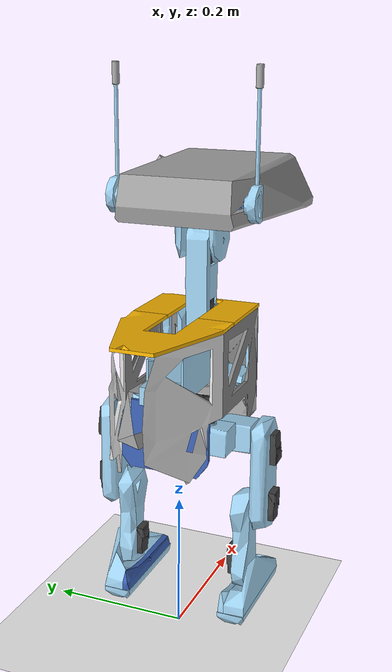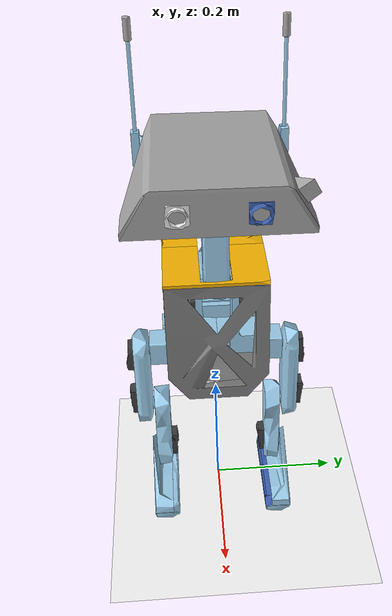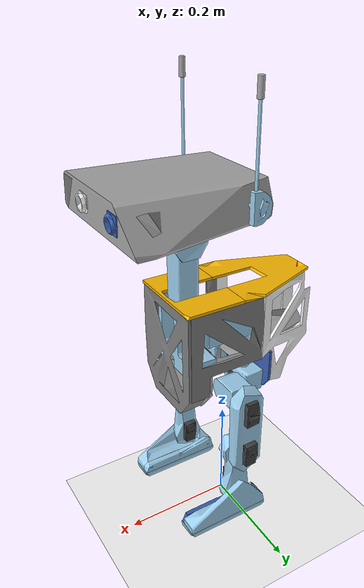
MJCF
<mujoco model="scene">
    <include file="bdx_v2.xml"/>

    <visual>
        <headlight diffuse="0.6 0.6 0.6" ambient="0.3 0.3 0.3" specular="0 0 0"/>
        <rgba haze="0.15 0.25 0.35 1"/>
        <global azimuth="160" elevation="-20"/>
    </visual>

    <asset>
        <texture type="skybox" builtin="gradient" rgb1="1 1 1" rgb2="1 1 1" width="800" height="800"/>
        <texture type="2d" name="groundplane" builtin="checker" mark="edge" rgb1="1 1 1" rgb2="1 1 1" markrgb="0 0 0"
            width="300" height="300"/>
        <material name="groundplane" texture="groundplane" texuniform="true" texrepeat="5 5" reflectance="0"/>
    </asset>

    <worldbody>
        <body name="floor">
            <geom name="floor" size="0 0 0.01" type="plane" material="groundplane" contype="1" conaffinity="0"
                priority="1" friction="0.6" condim="3"/>
        </body>
    </worldbody>
    <keyframe>
        <key name="home"
            qpos="
    0 0 0.25
    1 0 0 0
          0
        0
        1.05
        -1.65
        -0.65
        -0.775
        -0.775
        0
        0
        0
        0
        1.05
        1.65
        0.65
"
            ctrl="
          0
        0
        1.05
        -1.65
        -0.65
        -0.775
        -0.775
        0
        0
        0
        0
        1.05
        1.65
        0.65
          "/>
    </keyframe>
</mujoco>

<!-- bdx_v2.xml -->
<!-- Generated using onshape-to-robot -->
<!-- Onshape https://cad.onshape.com/documents/6ef1edce1e53abf975b22e4e/w/36a342626c723895f8576bca/e/3f7555bc3cf0e9c73ccb9af7 -->
<mujoco model="bdx_v2">

  <option iterations="1" ls_iterations="5">
    <flag eulerdamp="disable"/>
  </option>
  <compiler angle="radian" meshdir="assets"/>

  <default>
    <default class="bdx_v2">
      <joint frictionloss="0.1" armature="0.005"/>
      <position kp="50" dampratio="1"/>
      <default class="visual">
        <geom type="mesh" contype="0" conaffinity="0" group="2"/>
      </default>
      <default class="collision">
        <geom group="3"/>
      </default>
    </default>
  </default>
  <!-- Additional sensors.xml -->
  <sensor>
    <gyro site="imu" name="gyro"/>
    <velocimeter site="imu" name="local_linvel"/>
    <accelerometer site="imu" name="accelerometer"/>
    <framezaxis objtype="site" objname="imu" name="upvector"/>
    <framexaxis objtype="site" objname="imu" name="forwardvector"/>
    <framelinvel objtype="site" objname="imu" name="global_linvel"/>
    <frameangvel objtype="site" objname="imu" name="global_angvel"/>
    <framepos objtype="site" objname="imu" name="position"/>
    <framequat objtype="site" objname="imu" name="orientation"/>
    <framelinvel objtype="site" objname="right_foot" name="right_foot_global_linvel"/>
    <framelinvel objtype="site" objname="left_foot" name="left_foot_global_linvel"/>
    <framexaxis objtype="site" objname="left_foot" name="left_foot_upvector"/>
    <framexaxis objtype="site" objname="right_foot" name="right_foot_upvector"/>
    <framepos objtype="site" objname="left_foot" name="left_foot_pos"/>
    <framepos objtype="site" objname="right_foot" name="right_foot_pos"/>
  </sensor>
  <!-- Additional joints_properties.xml -->
  <default>
    <default class="sts3215">
      <geom contype="0" conaffinity="0"/>
      <joint damping="0.60" frictionloss="0.052" armature="0.028"/>
      <position kp="100" kv="0.0" forcerange="-100 100"/>
    </default>
    <default class="backlash">
      <!-- +/- 0.5° of backlash -->
      <joint damping="0.01" frictionloss="0" armature="0.01" limited="true" range="-0.008726646259971648 0.008726646259971648"/>
    </default>
  </default>
  <worldbody>
    <!-- Link trunk_assembly -->
    <body name="trunk_assembly" pos="0 0 0.35" quat="1 0 0 0" childclass="bdx_v2">
      <freejoint name="trunk_assembly_freejoint"/>
      <inertial pos="0.00707759 0.000136617 0.0326219" mass="2.73391" fullinertia="0.00826751 0.0169634 0.0160137 7.20875e-06 0.000237105 -1.27506e-06"/>
      <!-- Frame imu -->
      <site group="0" name="imu" pos="-0.055 0 0.08"/>
      <!-- Part zeee_lipo -->
      <geom type="mesh" class="visual" pos="-0.0820727 0.0004 0.03675" quat="0.707107 -5.55112e-17 -3.33067e-16 0.707107" mesh="zeee_lipo" material="zeee_lipo_material"/>
      <!-- Part torso_frame_v2 -->
      <geom type="mesh" class="visual" pos="-0.00897275 -2.32199e-17 -0.02" quat="0.707107 0 1.11022e-16 0.707107" mesh="torso_frame_v2" material="torso_frame_v2_material"/>
      <!-- Part back_right_frame -->
      <geom type="mesh" class="visual" pos="-0.00897275 -2.77631e-17 1.77033e-17" quat="0.707107 0 0 0.707107" mesh="back_right_frame" material="back_right_frame_material"/>
      <!-- Part back_left_frame -->
      <geom type="mesh" class="visual" pos="-0.00897275 -2.77631e-17 1.77033e-17" quat="0.707107 0 1.11022e-16 0.707107" mesh="back_left_frame" material="back_left_frame_material"/>
      <!-- Part battery_rack -->
      <geom type="mesh" class="visual" pos="-0.0521557 -1.7578e-17 0.03725" quat="0.707107 0 0 0.707107" mesh="battery_rack" material="battery_rack_material"/>
      <!-- Part back_top_frame -->
      <geom type="mesh" class="visual" pos="-0.00897275 -3.42054e-17 1.77033e-17" quat="0.707107 -0 -2.22045e-16 0.707107" mesh="back_top_frame" material="back_top_frame_material"/>
      <!-- Part right_frame -->
      <geom type="mesh" class="visual" pos="-0.00897275 -2.77631e-17 3.15811e-17" quat="0.707107 0 -2.22045e-16 0.707107" mesh="right_frame" material="right_frame_material"/>
      <!-- Part inner_front_frame -->
      <geom type="mesh" class="visual" pos="-0.00897275 -2.7861e-17 1.77033e-17" quat="0.707107 0 -2.22045e-16 0.707107" mesh="inner_front_frame" material="inner_front_frame_material"/>
      <!-- Part front_frame -->
      <geom type="mesh" class="visual" pos="-0.00897275 -2.77631e-17 1.77033e-17" quat="0.707107 0 1.11022e-16 0.707107" mesh="front_frame" material="front_frame_material"/>
      <!-- Part servo_side -->
      <geom type="mesh" class="visual" pos="0.0610552 0.035 0.02" quat="0.5 0.5 0.5 0.5" mesh="servo_side" material="servo_side_material"/>
      <!-- Part circular_servo_prong -->
      <geom type="mesh" class="visual" pos="0.0810552 0.021 0.1" quat="0.707107 0.707107 4.44089e-16 7.04915e-15" mesh="circular_servo_prong" material="circular_servo_prong_material"/>
      <!-- Part bearing_side_spacer -->
      <geom type="mesh" class="visual" pos="0.0810552 -0.018 0.1" quat="3.30055e-15 3.30055e-15 0.707107 -0.707107" mesh="bearing_side_spacer" material="bearing_side_spacer_material"/>
      <!-- Part bearing_side -->
      <geom type="mesh" class="visual" pos="0.0610552 -0.035 0.02" quat="0.5 0.5 0.5 0.5" mesh="bearing_side" material="bearing_side_material"/>
      <!-- Part inner_back_frame -->
      <geom type="mesh" class="visual" pos="-0.0121557 -1.11131e-17 1.21431e-17" quat="0.707107 -0 1.11022e-16 0.707107" mesh="inner_back_frame" material="inner_back_frame_material"/>
      <!-- Part front_top_frame -->
      <geom type="mesh" class="visual" pos="-0.00897275 -3.0736e-17 1.77033e-17" quat="0.707107 0 -2.22045e-16 0.707107" mesh="front_top_frame" material="front_top_frame_material"/>
      <!-- Part left_frame -->
      <geom type="mesh" class="visual" pos="-0.00897275 -2.77631e-17 4.69285e-18" quat="0.707107 0 8.32667e-17 0.707107" mesh="left_frame" material="left_frame_material"/>
      <!-- Part wj_wk00_0124bottomcase_45 -->
      <geom type="mesh" class="visual" pos="-0.00897275 0.0241 -0.0079" quat="0.5 -0.5 0.5 -0.5" mesh="wj_wk00_0124bottomcase_45" material="wj_wk00_0124bottomcase_45_material"/>
      <!-- Part wj_wk00_0122topcabinetcase_95 -->
      <geom type="mesh" class="visual" pos="-0.00897275 0.0241 -0.0079" quat="0.5 -0.5 0.5 -0.5" mesh="wj_wk00_0122topcabinetcase_95" material="wj_wk00_0122topcabinetcase_95_material"/>
      <!-- Part wj_wk00_0123middlecase_56 -->
      <geom type="mesh" class="visual" pos="-0.00897275 0.0241 -0.0079" quat="0.5 -0.5 0.5 -0.5" mesh="wj_wk00_0123middlecase_56" material="wj_wk00_0123middlecase_56_material"/>
      <!-- Part wj_wk00_0124bottomcase_45_2 -->
      <geom type="mesh" class="visual" pos="-0.00897275 -0.0241 -0.0079" quat="0.5 -0.5 -0.5 0.5" mesh="wj_wk00_0124bottomcase_45" material="wj_wk00_0124bottomcase_45_material"/>
      <!-- Part wj_wk00_0122topcabinetcase_95_2 -->
      <geom type="mesh" class="visual" pos="-0.00897275 -0.0241 -0.0079" quat="0.5 -0.5 -0.5 0.5" mesh="wj_wk00_0122topcabinetcase_95" material="wj_wk00_0122topcabinetcase_95_material"/>
      <!-- Part wj_wk00_0123middlecase_56_2 -->
      <geom type="mesh" class="visual" pos="-0.00897275 -0.0241 -0.0079" quat="0.5 -0.5 -0.5 0.5" mesh="wj_wk00_0123middlecase_56" material="wj_wk00_0123middlecase_56_material"/>
      <!-- Frame trunk -->
      <site group="3" name="trunk" pos="0.0503443 -1.76728e-17 0.079" quat="1 0 -7.97973e-17 2.1859e-17"/>
      <!-- Link left_hip_rotator_cuff_assem -->
      <body name="left_hip_rotator_cuff_assem" pos="-0.00897275 0.0496 -0.0162" quat="0.707107 2.87086e-15 -1.11022e-16 -0.707107">
        <!-- Joint from trunk_assembly to left_hip_rotator_cuff_assem -->
        <joint axis="0 0 1" name="left_hip_yaw" type="hinge" range="-0.4363323129985664 1.1344640137963302" class="sts3215"/>
        <inertial pos="-0.000178906 -0.000213538 -0.0216312" mass="0.118126" fullinertia="3.14061e-05 6.11352e-05 5.72854e-05 -3.3789e-07 -1.39865e-07 -1.32975e-07"/>
        <!-- Part circular_servo_prong_2 -->
        <geom type="mesh" class="visual" pos="1.38778e-17 -5.20417e-18 -0.002" quat="0.707107 1.8927e-15 -4.71845e-15 -0.707107" mesh="circular_servo_prong" material="circular_servo_prong_material"/>
        <!-- Part right_hip_rotator_cuff -->
        <geom type="mesh" class="visual" pos="-0.064 0.0185 -0.027" quat="0.707107 -3.35657e-15 -0.707107 1.43586e-17" mesh="right_hip_rotator_cuff" material="right_hip_rotator_cuff_material"/>
        <!-- Part wj_wk00_0124bottomcase_45_3 -->
        <geom type="mesh" class="visual" pos="0.01265 0.0088 -0.027" quat="1 -2.17757e-15 -5.44009e-15 -2.22998e-15" mesh="wj_wk00_0124bottomcase_45" material="wj_wk00_0124bottomcase_45_material"/>
        <!-- Part wj_wk00_0122topcabinetcase_95_3 -->
        <geom type="mesh" class="visual" pos="0.01265 0.0088 -0.027" quat="1 -2.17757e-15 -5.44009e-15 -2.22998e-15" mesh="wj_wk00_0122topcabinetcase_95" material="wj_wk00_0122topcabinetcase_95_material"/>
        <!-- Part wj_wk00_0123middlecase_56_3 -->
        <geom type="mesh" class="visual" pos="0.01265 0.0088 -0.027" quat="1 -2.17757e-15 -5.44009e-15 -2.22998e-15" mesh="wj_wk00_0123middlecase_56" material="wj_wk00_0123middlecase_56_material"/>
        <!-- Link left_lateral_hip_bone_assem -->
        <body name="left_lateral_hip_bone_assem" pos="-0.01285 0.0171 -0.027" quat="0.5 0.5 0.5 -0.5">
          <!-- Joint from left_hip_rotator_cuff_assem to left_lateral_hip_bone_assem -->
          <joint axis="0 0 1" name="left_hip_roll" type="hinge" range="-0.4363323129985726 0.43633231299859215" class="sts3215"/>
          <inertial pos="-3.22586e-09 -0.0125969 -0.0217345" mass="0.110381" fullinertia="4.57868e-05 2.96288e-05 4.45791e-05 6.81317e-12 -9.00209e-13 -3.69846e-07"/>
          <!-- Part circular_servo_prong_3 -->
          <geom type="mesh" class="visual" pos="6.93889e-18 0 -0.002" quat="1 0 -5.55112e-17 -2.05758e-17" mesh="circular_servo_prong" material="circular_servo_prong_material"/>
          <!-- Part lateral_hip_bone -->
          <geom type="mesh" class="visual" pos="6.93889e-18 -0.02 -0.002" quat="9.36437e-17 0.707107 -0.707107 4.56148e-16" mesh="lateral_hip_bone" material="lateral_hip_bone_material"/>
          <!-- Part circular_servo_prong_4 -->
          <geom type="mesh" class="visual" pos="6.93889e-18 -0.04 -0.022" quat="0.5 0.5 -0.5 0.5" mesh="circular_servo_prong" material="circular_servo_prong_material"/>
          <!-- Link left_thigh_assem -->
          <body name="left_thigh_assem" pos="0 -0.042 -0.022" quat="0.707107 0.707107 -5.38879e-08 5.38879e-08">
            <!-- Joint from left_lateral_hip_bone_assem to left_thigh_assem -->
            <joint axis="0 0 1" name="left_hip_pitch" type="hinge" range="-1.5241807105326188e-07 3.141592501171722" class="sts3215"/>
            <inertial pos="0.0565982 -3.57567e-11 0.0135897" mass="0.314271" fullinertia="0.000100377 0.000691725 0.00074627 -4.47926e-08 2.07523e-19 3.3258e-20"/>
            <!-- Part left_thigh -->
            <geom type="mesh" class="visual" pos="0.0565982 -3.57567e-11 -0.0002" quat="0.707107 1.54556e-16 1.11022e-16 0.707107" mesh="left_thigh" material="left_thigh_material"/>
            <!-- Part wj_wk00_0124bottomcase_45_4 -->
            <geom type="mesh" class="visual" pos="0.0876965 -7.15135e-11 0.0083" quat="6.33606e-17 0 -0.707107 0.707107" mesh="wj_wk00_0124bottomcase_45" material="wj_wk00_0124bottomcase_45_material"/>
            <!-- Part wj_wk00_0122topcabinetcase_95_4 -->
            <geom type="mesh" class="visual" pos="0.0876965 -7.15135e-11 0.0083" quat="6.33606e-17 0 -0.707107 0.707107" mesh="wj_wk00_0122topcabinetcase_95" material="wj_wk00_0122topcabinetcase_95_material"/>
            <!-- Part wj_wk00_0123middlecase_56_4 -->
            <geom type="mesh" class="visual" pos="0.0876965 -7.15135e-11 0.0083" quat="6.33606e-17 0 -0.707107 0.707107" mesh="wj_wk00_0123middlecase_56" material="wj_wk00_0123middlecase_56_material"/>
            <!-- Part wj_wk00_0124bottomcase_45_5 -->
            <geom type="mesh" class="visual" pos="0.0255 -3.46945e-18 0.0083" quat="0.707107 -0.707107 -0 -7.12226e-24" mesh="wj_wk00_0124bottomcase_45" material="wj_wk00_0124bottomcase_45_material"/>
            <!-- Part wj_wk00_0122topcabinetcase_95_5 -->
            <geom type="mesh" class="visual" pos="0.0255 -3.46945e-18 0.0083" quat="0.707107 -0.707107 -0 -7.12226e-24" mesh="wj_wk00_0122topcabinetcase_95" material="wj_wk00_0122topcabinetcase_95_material"/>
            <!-- Part wj_wk00_0123middlecase_56_5 -->
            <geom type="mesh" class="visual" pos="0.0255 -3.46945e-18 0.0083" quat="0.707107 -0.707107 -0 -7.12226e-24" mesh="wj_wk00_0123middlecase_56" material="wj_wk00_0123middlecase_56_material"/>
            <!-- Link left_calf_assem -->
            <body name="left_calf_assem" pos="0.113196 -7.15135e-11 -4.16334e-17" quat="9.28799e-17 -4.51028e-17 -3.33067e-16 -1">
              <!-- Joint from left_thigh_assem to left_calf_assem -->
              <joint axis="0 0 1" name="left_knee" type="hinge" range="-3.1415923279115385 3.256782545868475e-07" class="sts3215"/>
              <inertial pos="-0.0526873 1.60599e-06 -0.0151918" mass="0.221129" fullinertia="5.58245e-05 0.00043323 0.000459275 1.87819e-08 -9.55779e-06 -9.66877e-10"/>
              <!-- Part circular_servo_prong_5 -->
              <geom type="mesh" class="visual" pos="-5.55112e-17 1.73472e-17 -0.002" quat="0.707107 -1.39796e-15 -1.22125e-15 -0.707107" mesh="circular_servo_prong" material="circular_servo_prong_material"/>
              <!-- Part left_calf -->
              <geom type="mesh" class="visual" pos="-0.0985 3.20793e-08 -0.027" quat="1.15145e-07 0.707107 -1.15145e-07 0.707107" mesh="left_calf" material="left_calf_material"/>
              <!-- Part wj_wk00_0124bottomcase_45_6 -->
              <geom type="mesh" class="visual" pos="-0.0731483 2.37871e-08 -0.0105" quat="0.707107 0.707107 -1.15145e-07 -1.15145e-07" mesh="wj_wk00_0124bottomcase_45" material="wj_wk00_0124bottomcase_45_material"/>
              <!-- Part wj_wk00_0122topcabinetcase_95_6 -->
              <geom type="mesh" class="visual" pos="-0.0731483 2.37871e-08 -0.0105" quat="0.707107 0.707107 -1.15145e-07 -1.15145e-07" mesh="wj_wk00_0122topcabinetcase_95" material="wj_wk00_0122topcabinetcase_95_material"/>
              <!-- Part wj_wk00_0123middlecase_56_6 -->
              <geom type="mesh" class="visual" pos="-0.0731483 2.37871e-08 -0.0105" quat="0.707107 0.707107 -1.15145e-07 -1.15145e-07" mesh="wj_wk00_0123middlecase_56" material="wj_wk00_0123middlecase_56_material"/>
              <!-- Link left_foot_assem -->
              <body name="left_foot_assem" pos="-0.0986483 3.20919e-08 -0.0022" quat="5.13478e-16 -1 7.6209e-08 -5.21026e-16">
                <!-- Joint from left_calf_assem to left_foot_assem -->
                <joint axis="0 0 1" name="left_ankle" type="hinge" range="-1.5707961535347135 1.5707965000550796" class="sts3215"/>
                <inertial pos="-0.0444214 -0.0216103 0.00782023" mass="0.311255" fullinertia="0.00064142 0.000140276 0.000695821 -2.8997e-05 2.323e-05 3.77705e-06"/>
                <!-- Part foot_button_connector -->
                <!-- Part circular_servo_prong_6 -->
                <geom type="mesh" class="visual" pos="0 0 -0.002" quat="1 0 0 -1.98192e-18" mesh="circular_servo_prong" material="circular_servo_prong_material"/>
                <!-- Part left_foot_frame -->
                <geom type="mesh" class="visual" pos="-0.05 1.31839e-16 -0.002" quat="0.5 0.5 0.5 0.5" mesh="left_foot_frame" material="left_foot_frame_material"/>
                <!-- Part left_foot_cover -->
                <geom type="mesh" class="visual" pos="-0.05 1.31839e-16 -0.002" quat="0.5 0.5 0.5 0.5" mesh="left_foot_cover" material="left_foot_cover_material"/>
                <!-- Part foot_pad -->
                <geom type="mesh" class="visual" pos="-0.0505 -0.025 0.0102" quat="0.5 0.5 0.5 -0.5" mesh="foot_pad" material="foot_pad_material"/>
                <geom type="mesh" class="collision" pos="-0.0505 -0.025 0.0102" quat="0.5 0.5 0.5 -0.5" mesh="foot_pad" material="foot_pad_material"
                name="left_foot_bottom_tpu"/>
                <!-- Frame left_foot -->
                <site group="3" name="left_foot" pos="-0.068 -0.025 0.0102" quat="0.5 -0.5 0.5 -0.5"/>
              </body>
            </body>
          </body>
        </body>
      </body>
      <!-- Link bottom_neck -->
      <body name="bottom_neck" pos="0.0810552 0.019 0.1" quat="0.5 -0.5 -0.5 -0.5">
        <!-- Joint from trunk_assembly to bottom_neck -->
        <joint axis="0 0 1" name="neck_pitch" type="hinge" range="-1.0471975511965976 0.0" class="sts3215"/>
        <inertial pos="0.0600186 0.000222011 -0.0175935" mass="0.274692" fullinertia="6.85265e-05 0.000556822 0.000563358 -5.57605e-07 9.97898e-09 7.16913e-09"/>
        <!-- Part bottom_neck_joint -->
        <geom type="mesh" class="visual" pos="0.0600153 0.000268429 -0.0368" quat="0.707107 -1.60677e-16 1.11022e-16 -0.707107" mesh="bottom_neck_joint" material="bottom_neck_joint_material"/>
        <!-- Part wj_wk00_0124bottomcase_45_7 -->
        <geom type="mesh" class="visual" pos="0.0255 -1.38778e-17 -0.0083" quat="0.707107 0.707107 -0 -5.7433e-31" mesh="wj_wk00_0124bottomcase_45" material="wj_wk00_0124bottomcase_45_material"/>
        <!-- Part wj_wk00_0122topcabinetcase_95_7 -->
        <geom type="mesh" class="visual" pos="0.0255 -1.38778e-17 -0.0083" quat="0.707107 0.707107 -0 -5.7433e-31" mesh="wj_wk00_0122topcabinetcase_95" material="wj_wk00_0122topcabinetcase_95_material"/>
        <!-- Part wj_wk00_0123middlecase_56_7 -->
        <geom type="mesh" class="visual" pos="0.0255 -1.38778e-17 -0.0083" quat="0.707107 0.707107 -0 -5.7433e-31" mesh="wj_wk00_0123middlecase_56" material="wj_wk00_0123middlecase_56_material"/>
        <!-- Part wj_wk00_0124bottomcase_45_8 -->
        <geom type="mesh" class="visual" pos="0.0945636 0.000268429 -0.0083" quat="2.49524e-16 3.56119e-16 0.707107 0.707107" mesh="wj_wk00_0124bottomcase_45" material="wj_wk00_0124bottomcase_45_material"/>
        <!-- Part wj_wk00_0122topcabinetcase_95_8 -->
        <geom type="mesh" class="visual" pos="0.0945636 0.000268429 -0.0083" quat="2.49524e-16 3.56119e-16 0.707107 0.707107" mesh="wj_wk00_0122topcabinetcase_95" material="wj_wk00_0122topcabinetcase_95_material"/>
        <!-- Part wj_wk00_0123middlecase_56_8 -->
        <geom type="mesh" class="visual" pos="0.0945636 0.000268429 -0.0083" quat="2.49524e-16 3.56119e-16 0.707107 0.707107" mesh="wj_wk00_0123middlecase_56" material="wj_wk00_0123middlecase_56_material"/>
        <!-- Link top_neck -->
        <body name="top_neck" pos="0.120064 0.000268429 9.47159e-16" quat="1.487e-16 0.707107 0.707107 -2.94747e-16">
          <!-- Joint from bottom_neck to top_neck -->
          <joint axis="0 0 1" name="head_pitch" type="hinge" range="-0.7853981633974101 0.7853981633974865" class="sts3215"/>
          <inertial pos="5.08398e-05 0.0347266 0.0188135" mass="0.236852" fullinertia="0.00026105 0.000166809 0.00022941 2.89716e-07 -1.14111e-08 6.06956e-07"/>
          <!-- Part neck_nod_hinge_bearing_side -->
          <geom type="mesh" class="visual" pos="0 -2.77556e-17 0.04" quat="1 -1.27759e-16 5.55112e-17 6.48043e-16" mesh="neck_nod_hinge_bearing_side" material="neck_nod_hinge_bearing_side_material"/>
          <!-- Part neck_nod_hinge_servo_side -->
          <geom type="mesh" class="visual" pos="1.38778e-17 0 -0.002" quat="1.11514e-16 -3.50414e-16 1 -3.27679e-16" mesh="neck_nod_hinge_servo_side" material="neck_nod_hinge_servo_side_material"/>
          <!-- Part bearing_side_spacer_2 -->
          <geom type="mesh" class="visual" pos="1.38778e-17 -5.55112e-17 0.037" quat="1 -1.42749e-16 -2.77556e-16 6.70261e-16" mesh="bearing_side_spacer" material="bearing_side_spacer_material"/>
          <!-- Part circular_servo_prong_7 -->
          <geom type="mesh" class="visual" pos="1.38778e-17 0 -0.002" quat="1 0 -1.73472e-18 6.32511e-17" mesh="circular_servo_prong" material="circular_servo_prong_material"/>
          <!-- Part wj_wk00_0124bottomcase_45_9 -->
          <geom type="mesh" class="visual" pos="-0.01314 0.0649 0.01886" quat="1.9006e-16 -2.62003e-16 1 -4.91187e-16" mesh="wj_wk00_0124bottomcase_45" material="wj_wk00_0124bottomcase_45_material"/>
          <!-- Part wj_wk00_0122topcabinetcase_95_9 -->
          <geom type="mesh" class="visual" pos="-0.01314 0.0649 0.01886" quat="1.9006e-16 -2.62003e-16 1 -4.91187e-16" mesh="wj_wk00_0122topcabinetcase_95" material="wj_wk00_0122topcabinetcase_95_material"/>
          <!-- Part wj_wk00_0123middlecase_56_9 -->
          <geom type="mesh" class="visual" pos="-0.01314 0.0649 0.01886" quat="1.9006e-16 -2.62003e-16 1 -4.91187e-16" mesh="wj_wk00_0123middlecase_56" material="wj_wk00_0123middlecase_56_material"/>
          <!-- Link neck_pan -->
          <body name="neck_pan" pos="0.01236 0.0732 0.01886" quat="0.707107 0.707107 -5.55112e-16 1.014e-15">
            <!-- Joint from top_neck to neck_pan -->
            <joint axis="0 0 1" name="head_yaw" type="hinge" range="-2.792526803190919 2.792526803190935" class="sts3215"/>
            <inertial pos="0.0192236 -3.53105e-05 0.00686626" mass="0.200308" fullinertia="8.26821e-05 0.00113089 0.00110055 5.26224e-07 -0.000104745 8.5731e-08"/>
            <!-- Part neck_pan_joint -->
            <geom type="mesh" class="visual" pos="0 -5.96311e-19 -0.001" quat="2.97579e-29 0.707107 -0.707107 -2.6986e-17" mesh="neck_pan_joint" material="neck_pan_joint_material"/>
            <!-- Part circular_servo_prong_8 -->
            <geom type="mesh" class="visual" pos="0 -3.79471e-19 -0.002" quat="1 0 0 0" mesh="circular_servo_prong" material="circular_servo_prong_material"/>
            <!-- Part wj_wk00_0124bottomcase_45_10 -->
            <geom type="mesh" class="visual" pos="0.1019 -0.00014 0.03279" quat="0.5 -0.5 -0.5 -0.5" mesh="wj_wk00_0124bottomcase_45" material="wj_wk00_0124bottomcase_45_material"/>
            <!-- Part wj_wk00_0122topcabinetcase_95_10 -->
            <geom type="mesh" class="visual" pos="0.1019 -0.00014 0.03279" quat="0.5 -0.5 -0.5 -0.5" mesh="wj_wk00_0122topcabinetcase_95" material="wj_wk00_0122topcabinetcase_95_material"/>
            <!-- Part wj_wk00_0123middlecase_56_10 -->
            <geom type="mesh" class="visual" pos="0.1019 -0.00014 0.03279" quat="0.5 -0.5 -0.5 -0.5" mesh="wj_wk00_0123middlecase_56" material="wj_wk00_0123middlecase_56_material"/>
            <!-- Link head_frame_v2_assm -->
            <body name="head_frame_v2_assm" pos="0.1102 -0.00014 0.00729" quat="0.5 0.5 -0.5 -0.5">
              <!-- Joint from neck_pan to head_frame_v2_assm -->
              <joint axis="0 0 1" name="head_roll" type="hinge" range="-0.5235987755982944 0.5235987755983033" class="sts3215"/>
              <inertial pos="0.00214224 -0.00571946 0.0951783" mass="1.71919" fullinertia="0.010588 0.0197825 0.011032 3.1474e-05 0.000281752 -5.34079e-05"/>
              <!-- Part left_antenna_base -->
              <geom type="mesh" class="visual" pos="0.08927 -1.66533e-16 0.193475" quat="4.38059e-16 -0.707107 4.44089e-16 -0.707107" mesh="left_antenna_base" material="left_antenna_base_material"/>
              <!-- Part antenna_tip -->
              <geom type="mesh" class="visual" pos="0.10027 0.005 0.185225" quat="5.14936e-16 -0.707107 0.707107 5.20711e-16" mesh="antenna_tip" material="antenna_tip_material"/>
              <!-- Part antenna -->
              <geom type="mesh" class="visual" pos="0.10027 0.005 0.185225" quat="5.17028e-16 -0.707107 0.707107 5.06274e-16" mesh="antenna" material="antenna_material"/>
              <!-- Part ws2812_light_diffuser -->
              <geom type="mesh" class="visual" pos="0.05 0 -0.002" quat="1 5.26263e-16 -1.11022e-16 1.29688e-17" mesh="ws2812_light_diffuser" material="ws2812_light_diffuser_material"/>
              <!-- Part circular_servo_prong_9 -->
              <geom type="mesh" class="visual" pos="0 0 -0.002" quat="1 0 8.32667e-17 2.32732e-17" mesh="circular_servo_prong" material="circular_servo_prong_material"/>
              <!-- Part sg90 -->
              <geom type="mesh" class="visual" pos="0.0583 -1.66533e-16 0.1878" quat="4.38059e-16 -0.707107 3.33067e-16 -0.707107" mesh="sg90" material="sg90_material"/>
              <!-- Part right_eye -->
              <geom type="mesh" class="visual" pos="2.0383e-17 -0.03 0.107" quat="1.6686e-17 1.07144e-16 -0.707107 -0.707107" mesh="right_eye" material="right_eye_material"/>
              <!-- Part one_piece_head_frame -->
              <geom type="mesh" class="visual" pos="-3.52366e-18 -0.03 0.107" quat="2.45508e-17 -8.13884e-17 -0.707107 -0.707107" mesh="one_piece_head_frame" material="one_piece_head_frame_material"/>
              <!-- Part bearing -->
              <geom type="mesh" class="visual" pos="-1.8323e-17 -1.66533e-16 0.208" quat="1 5.50329e-16 -2.22045e-16 2.06642e-17" mesh="bearing" material="bearing_material"/>
              <!-- Part left_eye -->
              <geom type="mesh" class="visual" pos="1.34441e-17 -0.03 0.107" quat="1.6686e-17 1.07144e-16 -0.707107 -0.707107" mesh="left_eye" material="left_eye_material"/>
              <!-- Part tpu_shell -->
              <geom type="mesh" class="visual" pos="1.70762e-17 0.03 0.107" quat="0.707107 0.707107 2.22045e-16 -2.00108e-16" mesh="tpu_shell" material="tpu_shell_material"/>
              <!-- Part sg90_2 -->
              <geom type="mesh" class="visual" pos="-0.0583 -1.66533e-16 0.1878" quat="0.707107 3.89546e-16 -0.707107 -5.08564e-16" mesh="sg90" material="sg90_material"/>
              <!-- Part antenna_2 -->
              <geom type="mesh" class="visual" pos="-0.10027 0.005 0.185225" quat="0.707107 2.94206e-16 4.85723e-16 -0.707107" mesh="antenna" material="antenna_material"/>
              <!-- Part antenna_tip_2 -->
              <geom type="mesh" class="visual" pos="-0.10027 0.005 0.185225" quat="0.5 0.5 -0.5 -0.5" mesh="antenna_tip" material="antenna_tip_material"/>
              <!-- Part right_antenna_base -->
              <geom type="mesh" class="visual" pos="-0.08927 -1.66533e-16 0.193475" quat="3.8654e-16 -0.707107 4.44089e-16 -0.707107" mesh="right_antenna_base" material="right_antenna_base_material"
              name="right_foot_bottom_tpu"/>
              <!-- Frame head -->
              <site group="3" name="head" pos="5.31259e-18 -0.0392089 0.0982741" quat="0.506684 0.493226 0.493226 -0.506684"/>
            </body>
          </body>
        </body>
      </body>
      <!-- Link right_hip_rotator_cuff_assem -->
      <body name="right_hip_rotator_cuff_assem" pos="-0.00897275 -0.0496 -0.0162" quat="0.707107 -2.7046e-15 -5.55112e-16 0.707107">
        <!-- Joint from trunk_assembly to right_hip_rotator_cuff_assem -->
        <joint axis="0 0 1" name="right_hip_yaw" type="hinge" range="-1.1344640137963027 0.43633231299859393" class="sts3215"/>
        <inertial pos="-0.000178783 0.000213536 -0.0216253" mass="0.118127" fullinertia="3.13989e-05 6.11284e-05 5.7286e-05 3.37893e-07 -1.25933e-07 1.38055e-07"/>
        <!-- Part hip_rotator_cuff -->
        <geom type="mesh" class="visual" pos="-6.93889e-18 -0.0185 -0.027" quat="3.56821e-15 -0.707107 -2.22045e-16 -0.707107" mesh="hip_rotator_cuff" material="hip_rotator_cuff_material"/>
        <!-- Part circular_servo_prong_10 -->
        <geom type="mesh" class="visual" pos="-6.93889e-18 0 -0.002" quat="0.707107 5.97945e-16 2.60902e-15 -0.707107" mesh="circular_servo_prong" material="circular_servo_prong_material"/>
        <!-- Part wj_wk00_0124bottomcase_45_11 -->
        <geom type="mesh" class="visual" pos="0.01265 -0.0088 -0.027" quat="2.28453e-15 -1 -2.77556e-15 1.50666e-15" mesh="wj_wk00_0124bottomcase_45" material="wj_wk00_0124bottomcase_45_material"/>
        <!-- Part wj_wk00_0122topcabinetcase_95_11 -->
        <geom type="mesh" class="visual" pos="0.01265 -0.0088 -0.027" quat="2.28453e-15 -1 -2.77556e-15 1.50666e-15" mesh="wj_wk00_0122topcabinetcase_95" material="wj_wk00_0122topcabinetcase_95_material"/>
        <!-- Part wj_wk00_0123middlecase_56_11 -->
        <geom type="mesh" class="visual" pos="0.01265 -0.0088 -0.027" quat="2.28453e-15 -1 -2.77556e-15 1.50666e-15" mesh="wj_wk00_0123middlecase_56" material="wj_wk00_0123middlecase_56_material"/>
        <!-- Link right_lateral_hip_bone_assem -->
        <body name="right_lateral_hip_bone_assem" pos="-0.01285 -0.0171 -0.027" quat="0.707107 -0.707107 -9.99201e-16 3.07251e-15">
          <!-- Joint from right_hip_rotator_cuff_assem to right_lateral_hip_bone_assem -->
          <joint axis="0 0 1" name="right_hip_roll" type="hinge" range="-0.43633231299857617 0.4363323129985886" class="sts3215"/>
          <inertial pos="-0.0125969 3.22586e-09 -0.0217345" mass="0.110381" fullinertia="2.96288e-05 4.57868e-05 4.45791e-05 -6.81317e-12 -3.69846e-07 9.00209e-13"/>
          <!-- Part circular_servo_prong_11 -->
          <geom type="mesh" class="visual" pos="-1.38778e-17 0 -0.002" quat="0.707107 8.63902e-19 -1.11022e-16 -0.707107" mesh="circular_servo_prong" material="circular_servo_prong_material"/>
          <!-- Part lateral_hip_bone_2 -->
          <geom type="mesh" class="visual" pos="-0.02 1.17961e-16 -0.002" quat="9.67111e-17 -3.12424e-15 -1 4.3642e-17" mesh="lateral_hip_bone" material="lateral_hip_bone_material"/>
          <!-- Part circular_servo_prong_12 -->
          <geom type="mesh" class="visual" pos="-0.04 2.35922e-16 -0.022" quat="0.707107 -1.8321e-15 -0.707107 -1.56413e-15" mesh="circular_servo_prong" material="circular_servo_prong_material"/>
          <!-- Link right_thigh_assem -->
          <body name="right_thigh_assem" pos="-0.042 2.498e-16 -0.022" quat="1.88438e-15 0.707107 -1.33227e-15 0.707107">
            <!-- Joint from right_lateral_hip_bone_assem to right_thigh_assem -->
            <joint axis="0 0 1" name="right_hip_pitch" type="hinge" range="-4.275646503515418e-10 3.1415926531622285" class="sts3215"/>
            <inertial pos="5.99559e-11 -0.0565982 -0.0135897" mass="0.314271" fullinertia="0.000691725 0.000100377 0.00074627 -4.47924e-08 -3.91539e-19 3.36696e-19"/>
            <!-- Part left_thigh_2 -->
            <geom type="mesh" class="visual" pos="5.99559e-11 -0.0565982 0.0002" quat="8.00202e-16 1 2.13782e-10 -2.01375e-16" mesh="left_thigh" material="left_thigh_material"/>
            <!-- Part wj_wk00_0124bottomcase_45_12 -->
            <geom type="mesh" class="visual" pos="1.09027e-11 -0.0255 -0.0083" quat="0.5 0.5 -0.5 -0.5" mesh="wj_wk00_0124bottomcase_45" material="wj_wk00_0124bottomcase_45_material"/>
            <!-- Part wj_wk00_0122topcabinetcase_95_12 -->
            <geom type="mesh" class="visual" pos="1.09027e-11 -0.0255 -0.0083" quat="0.5 0.5 -0.5 -0.5" mesh="wj_wk00_0122topcabinetcase_95" material="wj_wk00_0122topcabinetcase_95_material"/>
            <!-- Part wj_wk00_0123middlecase_56_12 -->
            <geom type="mesh" class="visual" pos="1.09027e-11 -0.0255 -0.0083" quat="0.5 0.5 -0.5 -0.5" mesh="wj_wk00_0123middlecase_56" material="wj_wk00_0123middlecase_56_material"/>
            <!-- Part wj_wk00_0124bottomcase_45_13 -->
            <geom type="mesh" class="visual" pos="1.09009e-10 -0.0876965 -0.0083" quat="0.5 0.5 0.5 0.5" mesh="wj_wk00_0124bottomcase_45" material="wj_wk00_0124bottomcase_45_material"/>
            <!-- Part wj_wk00_0122topcabinetcase_95_13 -->
            <geom type="mesh" class="visual" pos="1.09009e-10 -0.0876965 -0.0083" quat="0.5 0.5 0.5 0.5" mesh="wj_wk00_0122topcabinetcase_95" material="wj_wk00_0122topcabinetcase_95_material"/>
            <!-- Part wj_wk00_0123middlecase_56_13 -->
            <geom type="mesh" class="visual" pos="1.09009e-10 -0.0876965 -0.0083" quat="0.5 0.5 0.5 0.5" mesh="wj_wk00_0123middlecase_56" material="wj_wk00_0123middlecase_56_material"/>
            <!-- Link right_calft_assem -->
            <body name="right_calft_assem" pos="1.19912e-10 -0.113196 3.46945e-16" quat="1.35404e-16 2.13783e-10 -1 7.43072e-16">
              <!-- Joint from right_thigh_assem to right_calft_assem -->
              <joint axis="0 0 1" name="right_knee" type="hinge" range="0.0 3.141592653589793" class="sts3215"/>
              <inertial pos="-1.58883e-06 -0.0526873 -0.0151918" mass="0.221129" fullinertia="0.00043323 5.58245e-05 0.000459275 -1.8659e-08 9.6999e-10 -9.55779e-06"/>
              <!-- Part circular_servo_prong_13 -->
              <geom type="mesh" class="visual" pos="0 0 -0.002" quat="1 -0 1.55204e-16 4.14788e-16" mesh="circular_servo_prong" material="circular_servo_prong_material"/>
              <!-- Part left_calf_2 -->
              <geom type="mesh" class="visual" pos="5.89806e-17 -0.0985 -0.027" quat="0.5 -0.5 -0.5 -0.5" mesh="left_calf" material="left_calf_material"/>
              <!-- Part wj_wk00_0124bottomcase_45_14 -->
              <geom type="mesh" class="visual" pos="3.57568e-11 -0.0731483 -0.0105" quat="0.5 0.5 0.5 0.5" mesh="wj_wk00_0124bottomcase_45" material="wj_wk00_0124bottomcase_45_material"/>
              <!-- Part wj_wk00_0122topcabinetcase_95_14 -->
              <geom type="mesh" class="visual" pos="3.57568e-11 -0.0731483 -0.0105" quat="0.5 0.5 0.5 0.5" mesh="wj_wk00_0122topcabinetcase_95" material="wj_wk00_0122topcabinetcase_95_material"/>
              <!-- Part wj_wk00_0123middlecase_56_14 -->
              <geom type="mesh" class="visual" pos="3.57568e-11 -0.0731483 -0.0105" quat="0.5 0.5 0.5 0.5" mesh="wj_wk00_0123middlecase_56" material="wj_wk00_0123middlecase_56_material"/>
              <!-- Link right_foot_assem -->
              <body name="right_foot_assem" pos="3.57568e-11 -0.0986483 -0.0022" quat="2.20883e-17 0.707107 0.707107 -6.05354e-17">
                <!-- Joint from right_calft_assem to right_foot_assem -->
                <joint axis="0 0 1" name="right_ankle" type="hinge" range="-1.570796326367332 1.5707963272224612" class="sts3215"/>
                <inertial pos="-0.0444214 0.0216102 0.00981301" mass="0.311255" fullinertia="0.00064146 0.000140317 0.00069582 2.89972e-05 2.333e-05 -3.82611e-06"/>
                <!-- Part right_foot_cover -->
                <geom type="mesh" class="visual" pos="-0.05 8.32667e-17 0.0646" quat="0.5 -0.5 0.5 -0.5" mesh="right_foot_cover" material="right_foot_cover_material"/>
                <!-- Part circular_servo_prong_14 -->
                <geom type="mesh" class="visual" pos="0 0 -0.002" quat="1 0 -3.33067e-16 5.34653e-17" mesh="circular_servo_prong" material="circular_servo_prong_material"/>
                <!-- Part right_foot_frame -->
                <geom type="mesh" class="visual" pos="-0.05 8.32667e-17 0.0646" quat="0.5 -0.5 0.5 -0.5" mesh="right_foot_frame" material="right_foot_frame_material"/>
                <!-- Part foot_pad_2 -->
                <geom type="mesh" class="visual" pos="-0.0505 0.025 0.0122" quat="0.5 -0.5 -0.5 -0.5" mesh="foot_pad" material="foot_pad_material"/>
                <geom type="mesh" class="collision" pos="-0.0505 0.025 0.0122" quat="0.5 -0.5 -0.5 -0.5" mesh="foot_pad" material="foot_pad_material"/>
                <!-- Part foot_button_connector_2 -->
                <!-- Frame right_foot -->
                <site group="3" name="right_foot" pos="-0.068 0.025 0.0122" quat="0.5 0.5 0.5 0.5"/>
              </body>
            </body>
          </body>
        </body>
      </body>
    </body>
  </worldbody>
  <asset>
    <mesh file="battery_rack.stl"/>
    <mesh file="left_calf.stl"/>
    <mesh file="wj_wk00_0122topcabinetcase_95.stl"/>
    <mesh file="right_frame.stl"/>
    <mesh file="wj_wk00_0124bottomcase_45.stl"/>
    <mesh file="lateral_hip_bone.stl"/>
    <mesh file="bearing.stl"/>
    <mesh file="right_eye.stl"/>
    <mesh file="servo_side.stl"/>
    <mesh file="wj_wk00_0123middlecase_56.stl"/>
    <mesh file="one_piece_head_frame.stl"/>
    <mesh file="neck_nod_hinge_servo_side.stl"/>
    <mesh file="right_hip_rotator_cuff.stl"/>
    <mesh file="bottom_neck_joint.stl"/>
    <mesh file="neck_pan_joint.stl"/>
    <mesh file="left_antenna_base.stl"/>
    <mesh file="bearing_side.stl"/>
    <mesh file="antenna_tip.stl"/>
    <mesh file="torso_frame_v2.stl"/>
    <mesh file="right_foot_cover.stl"/>
    <mesh file="zeee_lipo.stl"/>
    <mesh file="bearing_side_spacer.stl"/>
    <mesh file="left_foot_cover.stl"/>
    <mesh file="foot_pad.stl"/>
    <mesh file="neck_nod_hinge_bearing_side.stl"/>
    <mesh file="tpu_shell.stl"/>
    <mesh file="right_foot_frame.stl"/>
    <mesh file="antenna.stl"/>
    <mesh file="circular_servo_prong.stl"/>
    <mesh file="front_top_frame.stl"/>
    <mesh file="left_thigh.stl"/>
    <mesh file="ws2812_light_diffuser.stl"/>
    <mesh file="back_right_frame.stl"/>
    <mesh file="inner_front_frame.stl"/>
    <mesh file="front_frame.stl"/>
    <mesh file="sg90.stl"/>
    <mesh file="left_eye.stl"/>
    <mesh file="back_left_frame.stl"/>
    <mesh file="hip_rotator_cuff.stl"/>
    <mesh file="left_foot_frame.stl"/>
    <mesh file="right_antenna_base.stl"/>
    <mesh file="back_top_frame.stl"/>
    <mesh file="inner_back_frame.stl"/>
    <mesh file="left_frame.stl"/>
    <material name="zeee_lipo_material" rgba="0.615686 0.811765 0.929412 1"/>
    <material name="torso_frame_v2_material" rgba="0.647059 0.647059 0.647059 1"/>
    <material name="back_right_frame_material" rgba="0.917647 0.917647 0.917647 1"/>
    <material name="back_left_frame_material" rgba="0.917647 0.917647 0.917647 1"/>
    <material name="battery_rack_material" rgba="0.615686 0.811765 0.929412 1"/>
    <material name="back_top_frame_material" rgba="0.980392 0.713725 0.00392157 1"/>
    <material name="right_frame_material" rgba="0.498039 0.498039 0.498039 1"/>
    <material name="inner_front_frame_material" rgba="0.647059 0.647059 0.647059 1"/>
    <material name="front_frame_material" rgba="0.498039 0.498039 0.498039 1"/>
    <material name="servo_side_material" rgba="0.615686 0.811765 0.929412 1"/>
    <material name="circular_servo_prong_material" rgba="0.615686 0.811765 0.929412 1"/>
    <material name="bearing_side_spacer_material" rgba="0.615686 0.811765 0.929412 1"/>
    <material name="bearing_side_material" rgba="0.615686 0.811765 0.929412 1"/>
    <material name="inner_back_frame_material" rgba="0.231373 0.380392 0.705882 1"/>
    <material name="front_top_frame_material" rgba="0.980392 0.713725 0.00392157 1"/>
    <material name="left_frame_material" rgba="0.498039 0.498039 0.498039 1"/>
    <material name="wj_wk00_0124bottomcase_45_material" rgba="0.247059 0.243137 0.243137 1"/>
    <material name="wj_wk00_0122topcabinetcase_95_material" rgba="0.247059 0.243137 0.243137 1"/>
    <material name="wj_wk00_0123middlecase_56_material" rgba="0.247059 0.243137 0.243137 1"/>
    <material name="right_hip_rotator_cuff_material" rgba="0.615686 0.811765 0.929412 1"/>
    <material name="lateral_hip_bone_material" rgba="0.615686 0.811765 0.929412 1"/>
    <material name="left_thigh_material" rgba="0.615686 0.811765 0.929412 1"/>
    <material name="left_calf_material" rgba="0.615686 0.811765 0.929412 1"/>
    <material name="left_foot_frame_material" rgba="0.615686 0.811765 0.929412 1"/>
    <material name="left_foot_cover_material" rgba="0.231373 0.380392 0.705882 1"/>
    <material name="foot_pad_material" rgba="0.615686 0.811765 0.929412 1"/>
    <material name="bottom_neck_joint_material" rgba="0.615686 0.811765 0.929412 1"/>
    <material name="neck_nod_hinge_bearing_side_material" rgba="0.615686 0.811765 0.929412 1"/>
    <material name="neck_nod_hinge_servo_side_material" rgba="0.615686 0.811765 0.929412 1"/>
    <material name="neck_pan_joint_material" rgba="0.615686 0.811765 0.929412 1"/>
    <material name="left_antenna_base_material" rgba="0.615686 0.811765 0.929412 1"/>
    <material name="antenna_tip_material" rgba="0.647059 0.647059 0.647059 1"/>
    <material name="antenna_material" rgba="0.615686 0.811765 0.929412 1"/>
    <material name="ws2812_light_diffuser_material" rgba="0.615686 0.811765 0.929412 1"/>
    <material name="sg90_material" rgba="0.435294 0.670588 0.976471 1"/>
    <material name="right_eye_material" rgba="0.231373 0.380392 0.705882 1"/>
    <material name="one_piece_head_frame_material" rgba="0.615686 0.811765 0.929412 1"/>
    <material name="bearing_material" rgba="0.615686 0.811765 0.929412 1"/>
    <material name="left_eye_material" rgba="0.917647 0.917647 0.917647 1"/>
    <material name="tpu_shell_material" rgba="0.647059 0.647059 0.647059 1"/>
    <material name="right_antenna_base_material" rgba="0.615686 0.811765 0.929412 1"/>
    <material name="hip_rotator_cuff_material" rgba="0.615686 0.811765 0.929412 1"/>
    <material name="right_foot_cover_material" rgba="0.615686 0.811765 0.929412 1"/>
    <material name="right_foot_frame_material" rgba="0.615686 0.811765 0.929412 1"/>
  </asset>
  <actuator>
    <position class="sts3215" name="left_hip_yaw" joint="left_hip_yaw" inheritrange="1"/>
    <position class="sts3215" name="left_hip_roll" joint="left_hip_roll" inheritrange="1"/>
    <position class="sts3215" name="left_hip_pitch" joint="left_hip_pitch" inheritrange="1"/>
    <position class="sts3215" name="left_knee" joint="left_knee" inheritrange="1"/>
    <position class="sts3215" name="left_ankle" joint="left_ankle" inheritrange="1"/>
    <position class="sts3215" name="neck_pitch" joint="neck_pitch" inheritrange="1"/>
    <position class="sts3215" name="head_pitch" joint="head_pitch" inheritrange="1"/>
    <position class="sts3215" name="head_yaw" joint="head_yaw" inheritrange="1"/>
    <position class="sts3215" name="head_roll" joint="head_roll" inheritrange="1"/>
    <position class="sts3215" name="right_hip_yaw" joint="right_hip_yaw" inheritrange="1"/>
    <position class="sts3215" name="right_hip_roll" joint="right_hip_roll" inheritrange="1"/>
    <position class="sts3215" name="right_hip_pitch" joint="right_hip_pitch" inheritrange="1"/>
    <position class="sts3215" name="right_knee" joint="right_knee" inheritrange="1"/>
    <position class="sts3215" name="right_ankle" joint="right_ankle" inheritrange="1"/>
  </actuator>
  <equality/>
</mujoco>
